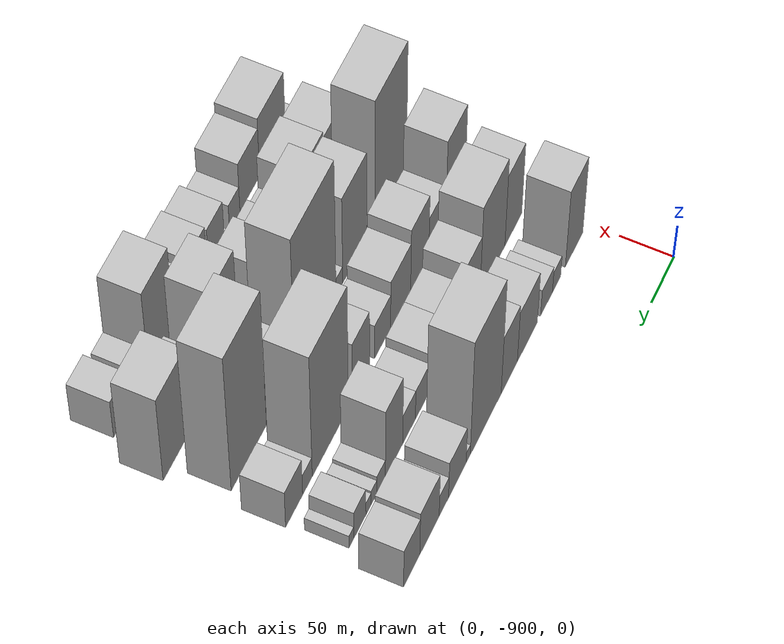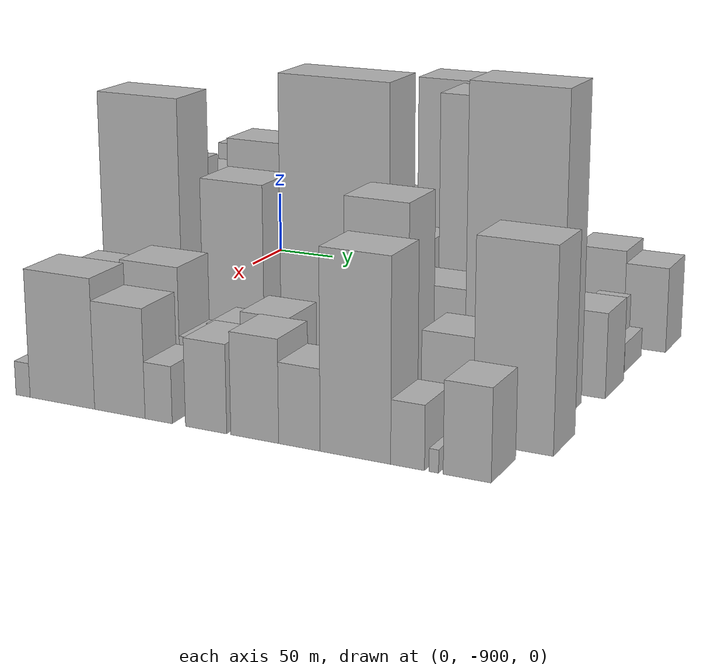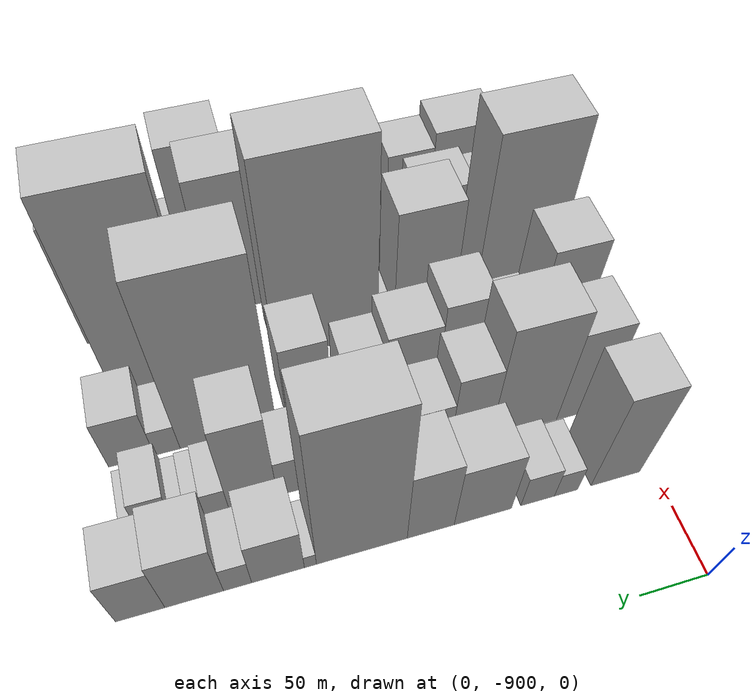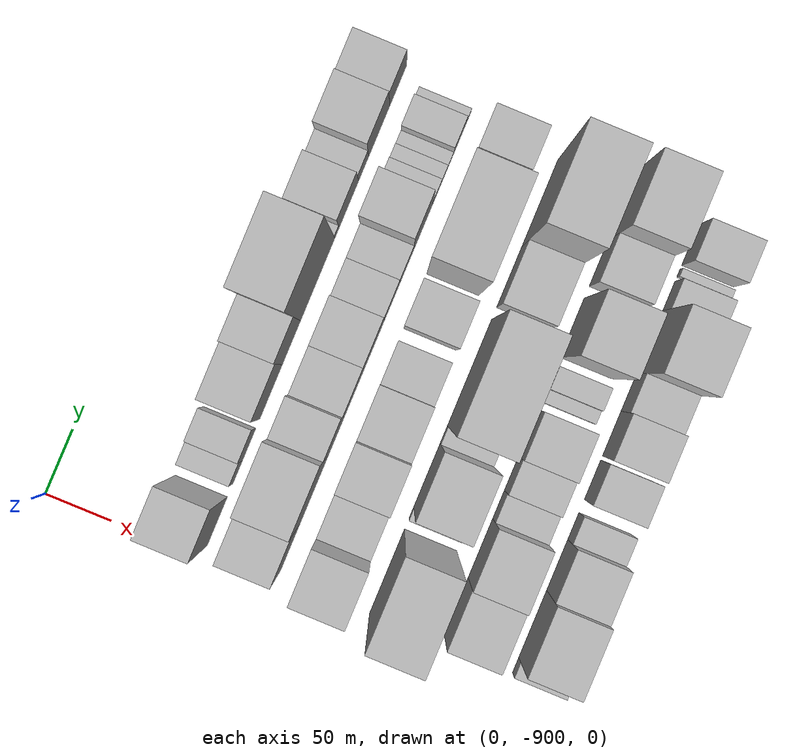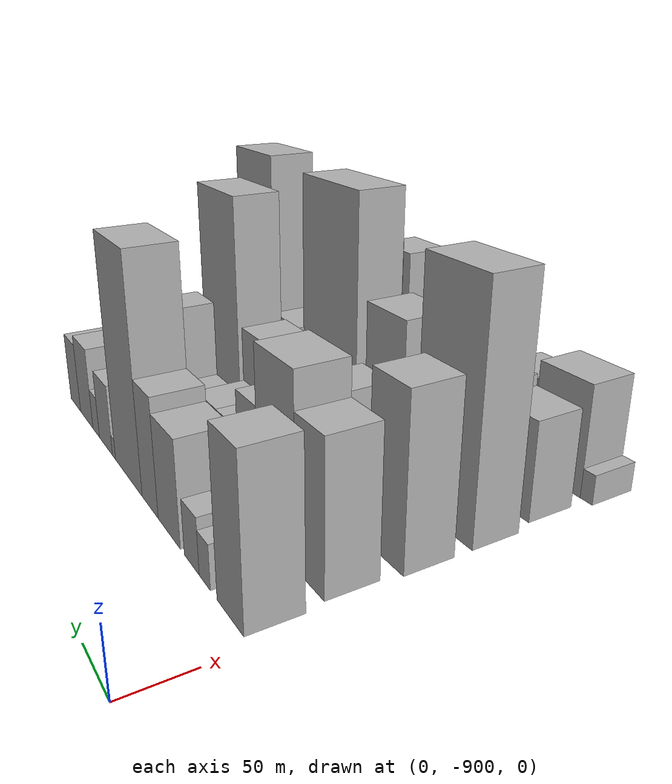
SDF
<sdf version="1.6">
 <world name="default">
  <model name="building_1">
   <static>1</static>
   <pose>100.0000 -871.1596 0 0.000000 0.000000 0.000000</pose>
   <link name="link">
    <pose>0 0 60.00 0 0 0</pose>
    <collision name="collision"><geometry><box><size>40.0000 37.6807 120.0000</size></box></geometry></collision>
    <visual name="visual">
     <cast_shadows>0</cast_shadows>
     <geometry><box><size>40.0000 37.6807 120.0000</size></box></geometry>
     <material>
      <script>
       <uri>model://HANNAS_wall/materials/scripts</uri>
       <uri>model://HANNAS_wall/materials/textures</uri>
       <name>vrc/HANNAS_wall</name>
      </script>
     </material>
    </visual>
   </link>
  </model>
  <model name="building_2">
   <static>1</static>
   <pose>100.0000 -833.4585 0 0.000000 0.000000 0.000000</pose>
   <link name="link">
    <pose>0 0 16.50 0 0 0</pose>
    <collision name="collision"><geometry><box><size>40.0000 17.7216 33.0000</size></box></geometry></collision>
    <visual name="visual">
     <cast_shadows>0</cast_shadows>
     <geometry><box><size>40.0000 17.7216 33.0000</size></box></geometry>
     <material>
      <script>
       <uri>model://HANNAS_wall/materials/scripts</uri>
       <uri>model://HANNAS_wall/materials/textures</uri>
       <name>vrc/HANNAS_wall</name>
      </script>
     </material>
    </visual>
   </link>
  </model>
  <model name="building_3">
   <static>1</static>
   <pose>100.0000 -812.0558 0 0.000000 0.000000 0.000000</pose>
   <link name="link">
    <pose>0 0 21.00 0 0 0</pose>
    <collision name="collision"><geometry><box><size>40.0000 25.0839 42.0000</size></box></geometry></collision>
    <visual name="visual">
     <cast_shadows>0</cast_shadows>
     <geometry><box><size>40.0000 25.0839 42.0000</size></box></geometry>
     <material>
      <script>
       <uri>model://HANNAS_wall/materials/scripts</uri>
       <uri>model://HANNAS_wall/materials/textures</uri>
       <name>vrc/HANNAS_wall</name>
      </script>
     </material>
    </visual>
   </link>
  </model>
  <model name="building_4">
   <static>1</static>
   <pose>100.0000 -771.5161 0 0.000000 0.000000 0.000000</pose>
   <link name="link">
    <pose>0 0 40.50 0 0 0</pose>
    <collision name="collision"><geometry><box><size>40.0000 41.9954 81.0000</size></box></geometry></collision>
    <visual name="visual">
     <cast_shadows>0</cast_shadows>
     <geometry><box><size>40.0000 41.9954 81.0000</size></box></geometry>
     <material>
      <script>
       <uri>model://HANNAS_wall/materials/scripts</uri>
       <uri>model://HANNAS_wall/materials/textures</uri>
       <name>vrc/HANNAS_wall</name>
      </script>
     </material>
    </visual>
   </link>
  </model>
  <model name="building_5">
   <static>1</static>
   <pose>100.0000 -733.6429 0 0.000000 0.000000 0.000000</pose>
   <link name="link">
    <pose>0 0 46.50 0 0 0</pose>
    <collision name="collision"><geometry><box><size>40.0000 33.7510 93.0000</size></box></geometry></collision>
    <visual name="visual">
     <cast_shadows>0</cast_shadows>
     <geometry><box><size>40.0000 33.7510 93.0000</size></box></geometry>
     <material>
      <script>
       <uri>model://HANNAS_wall/materials/scripts</uri>
       <uri>model://HANNAS_wall/materials/textures</uri>
       <name>vrc/HANNAS_wall</name>
      </script>
     </material>
    </visual>
   </link>
  </model>
  <model name="building_6">
   <static>1</static>
   <pose>100.0000 -685.0312 0 0.000000 0.000000 0.000000</pose>
   <link name="link">
    <pose>0 0 93.00 0 0 0</pose>
    <collision name="collision"><geometry><box><size>40.0000 63.4724 186.0000</size></box></geometry></collision>
    <visual name="visual">
     <cast_shadows>0</cast_shadows>
     <geometry><box><size>40.0000 63.4724 186.0000</size></box></geometry>
     <material>
      <script>
       <uri>model://HANNAS_wall/materials/scripts</uri>
       <uri>model://HANNAS_wall/materials/textures</uri>
       <name>vrc/HANNAS_wall</name>
      </script>
     </material>
    </visual>
   </link>
  </model>
  <model name="building_7">
   <static>1</static>
   <pose>100.0000 -649.1838 0 0.000000 0.000000 0.000000</pose>
   <link name="link">
    <pose>0 0 9.00 0 0 0</pose>
    <collision name="collision"><geometry><box><size>40.0000 8.2226 18.0000</size></box></geometry></collision>
    <visual name="visual">
     <cast_shadows>0</cast_shadows>
     <geometry><box><size>40.0000 8.2226 18.0000</size></box></geometry>
     <material>
      <script>
       <uri>model://HANNAS_wall/materials/scripts</uri>
       <uri>model://HANNAS_wall/materials/textures</uri>
       <name>vrc/HANNAS_wall</name>
      </script>
     </material>
    </visual>
   </link>
  </model>
  <model name="building_8">
   <static>1</static>
   <pose>100.0000 -627.2576 0 0.000000 0.000000 0.000000</pose>
   <link name="link">
    <pose>0 0 30.00 0 0 0</pose>
    <collision name="collision"><geometry><box><size>40.0000 35.6298 60.0000</size></box></geometry></collision>
    <visual name="visual">
     <cast_shadows>0</cast_shadows>
     <geometry><box><size>40.0000 35.6298 60.0000</size></box></geometry>
     <material>
      <script>
       <uri>model://HANNAS_wall/materials/scripts</uri>
       <uri>model://HANNAS_wall/materials/textures</uri>
       <name>vrc/HANNAS_wall</name>
      </script>
     </material>
    </visual>
   </link>
  </model>
  <model name="building_9">
   <static>1</static>
   <pose>100.0000 -600.0099 0 0.000000 0.000000 0.000000</pose>
   <link name="link">
    <pose>0 0 18.00 0 0 0</pose>
    <collision name="collision"><geometry><box><size>40.0000 18.8656 36.0000</size></box></geometry></collision>
    <visual name="visual">
     <cast_shadows>0</cast_shadows>
     <geometry><box><size>40.0000 18.8656 36.0000</size></box></geometry>
     <material>
      <script>
       <uri>model://HANNAS_wall/materials/scripts</uri>
       <uri>model://HANNAS_wall/materials/textures</uri>
       <name>vrc/HANNAS_wall</name>
      </script>
     </material>
    </visual>
   </link>
  </model>
  <model name="building_10">
   <static>1</static>
   <pose>100.0000 -571.3462 0 0.000000 0.000000 0.000000</pose>
   <link name="link">
    <pose>0 0 36.00 0 0 0</pose>
    <collision name="collision"><geometry><box><size>40.0000 38.4618 72.0000</size></box></geometry></collision>
    <visual name="visual">
     <cast_shadows>0</cast_shadows>
     <geometry><box><size>40.0000 38.4618 72.0000</size></box></geometry>
     <material>
      <script>
       <uri>model://HANNAS_wall/materials/scripts</uri>
       <uri>model://HANNAS_wall/materials/textures</uri>
       <name>vrc/HANNAS_wall</name>
      </script>
     </material>
    </visual>
   </link>
  </model>
  <model name="building_11">
   <static>1</static>
   <pose>100.0000 -536.1605 0 0.000000 0.000000 0.000000</pose>
   <link name="link">
    <pose>0 0 31.50 0 0 0</pose>
    <collision name="collision"><geometry><box><size>40.0000 31.9096 63.0000</size></box></geometry></collision>
    <visual name="visual">
     <cast_shadows>0</cast_shadows>
     <geometry><box><size>40.0000 31.9096 63.0000</size></box></geometry>
     <material>
      <script>
       <uri>model://HANNAS_wall/materials/scripts</uri>
       <uri>model://HANNAS_wall/materials/textures</uri>
       <name>vrc/HANNAS_wall</name>
      </script>
     </material>
    </visual>
   </link>
  </model>
  <model name="building_52">
   <static>1</static>
   <pose>155.0000 -868.0021 0 0.000000 0.000000 0.000000</pose>
   <link name="link">
    <pose>0 0 55.50 0 0 0</pose>
    <collision name="collision"><geometry><box><size>40.0000 35.9958 111.0000</size></box></geometry></collision>
    <visual name="visual">
     <cast_shadows>0</cast_shadows>
     <geometry><box><size>40.0000 35.9958 111.0000</size></box></geometry>
     <material>
      <script>
       <uri>model://HANNAS_wall/materials/scripts</uri>
       <uri>model://HANNAS_wall/materials/textures</uri>
       <name>vrc/HANNAS_wall</name>
      </script>
     </material>
    </visual>
   </link>
  </model>
  <model name="building_53">
   <static>1</static>
   <pose>155.0000 -823.8686 0 0.000000 0.000000 0.000000</pose>
   <link name="link">
    <pose>0 0 69.00 0 0 0</pose>
    <collision name="collision"><geometry><box><size>40.0000 52.2713 138.0000</size></box></geometry></collision>
    <visual name="visual">
     <cast_shadows>0</cast_shadows>
     <geometry><box><size>40.0000 52.2713 138.0000</size></box></geometry>
     <material>
      <script>
       <uri>model://HANNAS_wall/materials/scripts</uri>
       <uri>model://HANNAS_wall/materials/textures</uri>
       <name>vrc/HANNAS_wall</name>
      </script>
     </material>
    </visual>
   </link>
  </model>
  <model name="building_54">
   <static>1</static>
   <pose>155.0000 -782.2657 0 0.000000 0.000000 0.000000</pose>
   <link name="link">
    <pose>0 0 46.50 0 0 0</pose>
    <collision name="collision"><geometry><box><size>40.0000 30.9345 93.0000</size></box></geometry></collision>
    <visual name="visual">
     <cast_shadows>0</cast_shadows>
     <geometry><box><size>40.0000 30.9345 93.0000</size></box></geometry>
     <material>
      <script>
       <uri>model://HANNAS_wall/materials/scripts</uri>
       <uri>model://HANNAS_wall/materials/textures</uri>
       <name>vrc/HANNAS_wall</name>
      </script>
     </material>
    </visual>
   </link>
  </model>
  <model name="building_55">
   <static>1</static>
   <pose>155.0000 -748.6677 0 0.000000 0.000000 0.000000</pose>
   <link name="link">
    <pose>0 0 31.50 0 0 0</pose>
    <collision name="collision"><geometry><box><size>40.0000 36.2615 63.0000</size></box></geometry></collision>
    <visual name="visual">
     <cast_shadows>0</cast_shadows>
     <geometry><box><size>40.0000 36.2615 63.0000</size></box></geometry>
     <material>
      <script>
       <uri>model://HANNAS_wall/materials/scripts</uri>
       <uri>model://HANNAS_wall/materials/textures</uri>
       <name>vrc/HANNAS_wall</name>
      </script>
     </material>
    </visual>
   </link>
  </model>
  <model name="building_56">
   <static>1</static>
   <pose>155.0000 -712.0140 0 0.000000 0.000000 0.000000</pose>
   <link name="link">
    <pose>0 0 31.50 0 0 0</pose>
    <collision name="collision"><geometry><box><size>40.0000 37.0459 63.0000</size></box></geometry></collision>
    <visual name="visual">
     <cast_shadows>0</cast_shadows>
     <geometry><box><size>40.0000 37.0459 63.0000</size></box></geometry>
     <material>
      <script>
       <uri>model://HANNAS_wall/materials/scripts</uri>
       <uri>model://HANNAS_wall/materials/textures</uri>
       <name>vrc/HANNAS_wall</name>
      </script>
     </material>
    </visual>
   </link>
  </model>
  <model name="building_57">
   <static>1</static>
   <pose>155.0000 -679.3171 0 0.000000 0.000000 0.000000</pose>
   <link name="link">
    <pose>0 0 24.00 0 0 0</pose>
    <collision name="collision"><geometry><box><size>40.0000 28.3479 48.0000</size></box></geometry></collision>
    <visual name="visual">
     <cast_shadows>0</cast_shadows>
     <geometry><box><size>40.0000 28.3479 48.0000</size></box></geometry>
     <material>
      <script>
       <uri>model://HANNAS_wall/materials/scripts</uri>
       <uri>model://HANNAS_wall/materials/textures</uri>
       <name>vrc/HANNAS_wall</name>
      </script>
     </material>
    </visual>
   </link>
  </model>
  <model name="building_58">
   <static>1</static>
   <pose>155.0000 -652.4565 0 0.000000 0.000000 0.000000</pose>
   <link name="link">
    <pose>0 0 24.00 0 0 0</pose>
    <collision name="collision"><geometry><box><size>40.0000 25.3733 48.0000</size></box></geometry></collision>
    <visual name="visual">
     <cast_shadows>0</cast_shadows>
     <geometry><box><size>40.0000 25.3733 48.0000</size></box></geometry>
     <material>
      <script>
       <uri>model://HANNAS_wall/materials/scripts</uri>
       <uri>model://HANNAS_wall/materials/textures</uri>
       <name>vrc/HANNAS_wall</name>
      </script>
     </material>
    </visual>
   </link>
  </model>
  <model name="building_59">
   <static>1</static>
   <pose>155.0000 -622.4694 0 0.000000 0.000000 0.000000</pose>
   <link name="link">
    <pose>0 0 55.50 0 0 0</pose>
    <collision name="collision"><geometry><box><size>40.0000 34.6010 111.0000</size></box></geometry></collision>
    <visual name="visual">
     <cast_shadows>0</cast_shadows>
     <geometry><box><size>40.0000 34.6010 111.0000</size></box></geometry>
     <material>
      <script>
       <uri>model://HANNAS_wall/materials/scripts</uri>
       <uri>model://HANNAS_wall/materials/textures</uri>
       <name>vrc/HANNAS_wall</name>
      </script>
     </material>
    </visual>
   </link>
  </model>
  <model name="building_60">
   <static>1</static>
   <pose>155.0000 -596.7132 0 0.000000 0.000000 0.000000</pose>
   <link name="link">
    <pose>0 0 15.00 0 0 0</pose>
    <collision name="collision"><geometry><box><size>40.0000 16.9114 30.0000</size></box></geometry></collision>
    <visual name="visual">
     <cast_shadows>0</cast_shadows>
     <geometry><box><size>40.0000 16.9114 30.0000</size></box></geometry>
     <material>
      <script>
       <uri>model://HANNAS_wall/materials/scripts</uri>
       <uri>model://HANNAS_wall/materials/textures</uri>
       <name>vrc/HANNAS_wall</name>
      </script>
     </material>
    </visual>
   </link>
  </model>
  <model name="building_61">
   <static>1</static>
   <pose>155.0000 -582.6528 0 0.000000 0.000000 0.000000</pose>
   <link name="link">
    <pose>0 0 12.00 0 0 0</pose>
    <collision name="collision"><geometry><box><size>40.0000 11.2093 24.0000</size></box></geometry></collision>
    <visual name="visual">
     <cast_shadows>0</cast_shadows>
     <geometry><box><size>40.0000 11.2093 24.0000</size></box></geometry>
     <material>
      <script>
       <uri>model://HANNAS_wall/materials/scripts</uri>
       <uri>model://HANNAS_wall/materials/textures</uri>
       <name>vrc/HANNAS_wall</name>
      </script>
     </material>
    </visual>
   </link>
  </model>
  <model name="building_62">
   <static>1</static>
   <pose>155.0000 -571.9498 0 0.000000 0.000000 0.000000</pose>
   <link name="link">
    <pose>0 0 10.50 0 0 0</pose>
    <collision name="collision"><geometry><box><size>40.0000 10.1967 21.0000</size></box></geometry></collision>
    <visual name="visual">
     <cast_shadows>0</cast_shadows>
     <geometry><box><size>40.0000 10.1967 21.0000</size></box></geometry>
     <material>
      <script>
       <uri>model://HANNAS_wall/materials/scripts</uri>
       <uri>model://HANNAS_wall/materials/textures</uri>
       <name>vrc/HANNAS_wall</name>
      </script>
     </material>
    </visual>
   </link>
  </model>
  <model name="building_63">
   <static>1</static>
   <pose>155.0000 -555.0204 0 0.000000 0.000000 0.000000</pose>
   <link name="link">
    <pose>0 0 22.50 0 0 0</pose>
    <collision name="collision"><geometry><box><size>40.0000 23.6621 45.0000</size></box></geometry></collision>
    <visual name="visual">
     <cast_shadows>0</cast_shadows>
     <geometry><box><size>40.0000 23.6621 45.0000</size></box></geometry>
     <material>
      <script>
       <uri>model://HANNAS_wall/materials/scripts</uri>
       <uri>model://HANNAS_wall/materials/textures</uri>
       <name>vrc/HANNAS_wall</name>
      </script>
     </material>
    </visual>
   </link>
  </model>
  <model name="building_64">
   <static>1</static>
   <pose>155.0000 -538.4896 0 0.000000 0.000000 0.000000</pose>
   <link name="link">
    <pose>0 0 10.50 0 0 0</pose>
    <collision name="collision"><geometry><box><size>40.0000 9.3997 21.0000</size></box></geometry></collision>
    <visual name="visual">
     <cast_shadows>0</cast_shadows>
     <geometry><box><size>40.0000 9.3997 21.0000</size></box></geometry>
     <material>
      <script>
       <uri>model://HANNAS_wall/materials/scripts</uri>
       <uri>model://HANNAS_wall/materials/textures</uri>
       <name>vrc/HANNAS_wall</name>
      </script>
     </material>
    </visual>
   </link>
  </model>
  <model name="building_102">
   <static>1</static>
   <pose>210.0000 -869.7920 0 0.000000 0.000000 0.000000</pose>
   <link name="link">
    <pose>0 0 64.50 0 0 0</pose>
    <collision name="collision"><geometry><box><size>40.0000 40.4159 129.0000</size></box></geometry></collision>
    <visual name="visual">
     <cast_shadows>0</cast_shadows>
     <geometry><box><size>40.0000 40.4159 129.0000</size></box></geometry>
     <material>
      <script>
       <uri>model://HANNAS_wall/materials/scripts</uri>
       <uri>model://HANNAS_wall/materials/textures</uri>
       <name>vrc/HANNAS_wall</name>
      </script>
     </material>
    </visual>
   </link>
  </model>
  <model name="building_103">
   <static>1</static>
   <pose>210.0000 -832.0099 0 0.000000 0.000000 0.000000</pose>
   <link name="link">
    <pose>0 0 30.00 0 0 0</pose>
    <collision name="collision"><geometry><box><size>40.0000 35.1484 60.0000</size></box></geometry></collision>
    <visual name="visual">
     <cast_shadows>0</cast_shadows>
     <geometry><box><size>40.0000 35.1484 60.0000</size></box></geometry>
     <material>
      <script>
       <uri>model://HANNAS_wall/materials/scripts</uri>
       <uri>model://HANNAS_wall/materials/textures</uri>
       <name>vrc/HANNAS_wall</name>
      </script>
     </material>
    </visual>
   </link>
  </model>
  <model name="building_104">
   <static>1</static>
   <pose>210.0000 -795.7693 0 0.000000 0.000000 0.000000</pose>
   <link name="link">
    <pose>0 0 48.00 0 0 0</pose>
    <collision name="collision"><geometry><box><size>40.0000 37.3328 96.0000</size></box></geometry></collision>
    <visual name="visual">
     <cast_shadows>0</cast_shadows>
     <geometry><box><size>40.0000 37.3328 96.0000</size></box></geometry>
     <material>
      <script>
       <uri>model://HANNAS_wall/materials/scripts</uri>
       <uri>model://HANNAS_wall/materials/textures</uri>
       <name>vrc/HANNAS_wall</name>
      </script>
     </material>
    </visual>
   </link>
  </model>
  <model name="building_105">
   <static>1</static>
   <pose>210.0000 -756.6601 0 0.000000 0.000000 0.000000</pose>
   <link name="link">
    <pose>0 0 37.50 0 0 0</pose>
    <collision name="collision"><geometry><box><size>40.0000 40.8856 75.0000</size></box></geometry></collision>
    <visual name="visual">
     <cast_shadows>0</cast_shadows>
     <geometry><box><size>40.0000 40.8856 75.0000</size></box></geometry>
     <material>
      <script>
       <uri>model://HANNAS_wall/materials/scripts</uri>
       <uri>model://HANNAS_wall/materials/textures</uri>
       <name>vrc/HANNAS_wall</name>
      </script>
     </material>
    </visual>
   </link>
  </model>
  <model name="building_106">
   <static>1</static>
   <pose>210.0000 -720.0202 0 0.000000 0.000000 0.000000</pose>
   <link name="link">
    <pose>0 0 27.00 0 0 0</pose>
    <collision name="collision"><geometry><box><size>40.0000 32.3942 54.0000</size></box></geometry></collision>
    <visual name="visual">
     <cast_shadows>0</cast_shadows>
     <geometry><box><size>40.0000 32.3942 54.0000</size></box></geometry>
     <material>
      <script>
       <uri>model://HANNAS_wall/materials/scripts</uri>
       <uri>model://HANNAS_wall/materials/textures</uri>
       <name>vrc/HANNAS_wall</name>
      </script>
     </material>
    </visual>
   </link>
  </model>
  <model name="building_107">
   <static>1</static>
   <pose>210.0000 -676.7951 0 0.000000 0.000000 0.000000</pose>
   <link name="link">
    <pose>0 0 46.50 0 0 0</pose>
    <collision name="collision"><geometry><box><size>40.0000 34.0562 93.0000</size></box></geometry></collision>
    <visual name="visual">
     <cast_shadows>0</cast_shadows>
     <geometry><box><size>40.0000 34.0562 93.0000</size></box></geometry>
     <material>
      <script>
       <uri>model://HANNAS_wall/materials/scripts</uri>
       <uri>model://HANNAS_wall/materials/textures</uri>
       <name>vrc/HANNAS_wall</name>
      </script>
     </material>
    </visual>
   </link>
  </model>
  <model name="building_108">
   <static>1</static>
   <pose>210.0000 -616.2414 0 0.000000 0.000000 0.000000</pose>
   <link name="link">
    <pose>0 0 99.00 0 0 0</pose>
    <collision name="collision"><geometry><box><size>40.0000 71.0511 198.0000</size></box></geometry></collision>
    <visual name="visual">
     <cast_shadows>0</cast_shadows>
     <geometry><box><size>40.0000 71.0511 198.0000</size></box></geometry>
     <material>
      <script>
       <uri>model://HANNAS_wall/materials/scripts</uri>
       <uri>model://HANNAS_wall/materials/textures</uri>
       <name>vrc/HANNAS_wall</name>
      </script>
     </material>
    </visual>
   </link>
  </model>
  <model name="building_109">
   <static>1</static>
   <pose>210.0000 -571.4158 0 0.000000 0.000000 0.000000</pose>
   <link name="link">
    <pose>0 0 16.50 0 0 0</pose>
    <collision name="collision"><geometry><box><size>40.0000 18.6002 33.0000</size></box></geometry></collision>
    <visual name="visual">
     <cast_shadows>0</cast_shadows>
     <geometry><box><size>40.0000 18.6002 33.0000</size></box></geometry>
     <material>
      <script>
       <uri>model://HANNAS_wall/materials/scripts</uri>
       <uri>model://HANNAS_wall/materials/textures</uri>
       <name>vrc/HANNAS_wall</name>
      </script>
     </material>
    </visual>
   </link>
  </model>
  <model name="building_110">
   <static>1</static>
   <pose>210.0000 -545.7513 0 0.000000 0.000000 0.000000</pose>
   <link name="link">
    <pose>0 0 30.00 0 0 0</pose>
    <collision name="collision"><geometry><box><size>40.0000 32.7287 60.0000</size></box></geometry></collision>
    <visual name="visual">
     <cast_shadows>0</cast_shadows>
     <geometry><box><size>40.0000 32.7287 60.0000</size></box></geometry>
     <material>
      <script>
       <uri>model://HANNAS_wall/materials/scripts</uri>
       <uri>model://HANNAS_wall/materials/textures</uri>
       <name>vrc/HANNAS_wall</name>
      </script>
     </material>
    </visual>
   </link>
  </model>
  <model name="building_152">
   <static>1</static>
   <pose>265.0000 -857.5514 0 0.000000 0.000000 0.000000</pose>
   <link name="link">
    <pose>0 0 94.50 0 0 0</pose>
    <collision name="collision"><geometry><box><size>40.0000 64.8972 189.0000</size></box></geometry></collision>
    <visual name="visual">
     <cast_shadows>0</cast_shadows>
     <geometry><box><size>40.0000 64.8972 189.0000</size></box></geometry>
     <material>
      <script>
       <uri>model://HANNAS_wall/materials/scripts</uri>
       <uri>model://HANNAS_wall/materials/textures</uri>
       <name>vrc/HANNAS_wall</name>
      </script>
     </material>
    </visual>
   </link>
  </model>
  <model name="building_153">
   <static>1</static>
   <pose>265.0000 -812.6289 0 0.000000 0.000000 0.000000</pose>
   <link name="link">
    <pose>0 0 10.50 0 0 0</pose>
    <collision name="collision"><geometry><box><size>40.0000 8.9478 21.0000</size></box></geometry></collision>
    <visual name="visual">
     <cast_shadows>0</cast_shadows>
     <geometry><box><size>40.0000 8.9478 21.0000</size></box></geometry>
     <material>
      <script>
       <uri>model://HANNAS_wall/materials/scripts</uri>
       <uri>model://HANNAS_wall/materials/textures</uri>
       <name>vrc/HANNAS_wall</name>
      </script>
     </material>
    </visual>
   </link>
  </model>
  <model name="building_154">
   <static>1</static>
   <pose>265.0000 -783.6729 0 0.000000 0.000000 0.000000</pose>
   <link name="link">
    <pose>0 0 67.50 0 0 0</pose>
    <collision name="collision"><geometry><box><size>40.0000 48.9642 135.0000</size></box></geometry></collision>
    <visual name="visual">
     <cast_shadows>0</cast_shadows>
     <geometry><box><size>40.0000 48.9642 135.0000</size></box></geometry>
     <material>
      <script>
       <uri>model://HANNAS_wall/materials/scripts</uri>
       <uri>model://HANNAS_wall/materials/textures</uri>
       <name>vrc/HANNAS_wall</name>
      </script>
     </material>
    </visual>
   </link>
  </model>
  <model name="building_155">
   <static>1</static>
   <pose>265.0000 -752.5032 0 0.000000 0.000000 0.000000</pose>
   <link name="link">
    <pose>0 0 13.50 0 0 0</pose>
    <collision name="collision"><geometry><box><size>40.0000 13.3753 27.0000</size></box></geometry></collision>
    <visual name="visual">
     <cast_shadows>0</cast_shadows>
     <geometry><box><size>40.0000 13.3753 27.0000</size></box></geometry>
     <material>
      <script>
       <uri>model://HANNAS_wall/materials/scripts</uri>
       <uri>model://HANNAS_wall/materials/textures</uri>
       <name>vrc/HANNAS_wall</name>
      </script>
     </material>
    </visual>
   </link>
  </model>
  <model name="building_156">
   <static>1</static>
   <pose>265.0000 -704.7738 0 0.000000 0.000000 0.000000</pose>
   <link name="link">
    <pose>0 0 106.50 0 0 0</pose>
    <collision name="collision"><geometry><box><size>40.0000 82.0834 213.0000</size></box></geometry></collision>
    <visual name="visual">
     <cast_shadows>0</cast_shadows>
     <geometry><box><size>40.0000 82.0834 213.0000</size></box></geometry>
     <material>
      <script>
       <uri>model://HANNAS_wall/materials/scripts</uri>
       <uri>model://HANNAS_wall/materials/textures</uri>
       <name>vrc/HANNAS_wall</name>
      </script>
     </material>
    </visual>
   </link>
  </model>
  <model name="building_157">
   <static>1</static>
   <pose>265.0000 -631.7012 0 0.000000 0.000000 0.000000</pose>
   <link name="link">
    <pose>0 0 40.50 0 0 0</pose>
    <collision name="collision"><geometry><box><size>40.0000 46.0619 81.0000</size></box></geometry></collision>
    <visual name="visual">
     <cast_shadows>0</cast_shadows>
     <geometry><box><size>40.0000 46.0619 81.0000</size></box></geometry>
     <material>
      <script>
       <uri>model://HANNAS_wall/materials/scripts</uri>
       <uri>model://HANNAS_wall/materials/textures</uri>
       <name>vrc/HANNAS_wall</name>
      </script>
     </material>
    </visual>
   </link>
  </model>
  <model name="building_158">
   <static>1</static>
   <pose>265.0000 -574.9108 0 0.000000 0.000000 0.000000</pose>
   <link name="link">
    <pose>0 0 109.50 0 0 0</pose>
    <collision name="collision"><geometry><box><size>40.0000 67.5189 219.0000</size></box></geometry></collision>
    <visual name="visual">
     <cast_shadows>0</cast_shadows>
     <geometry><box><size>40.0000 67.5189 219.0000</size></box></geometry>
     <material>
      <script>
       <uri>model://HANNAS_wall/materials/scripts</uri>
       <uri>model://HANNAS_wall/materials/textures</uri>
       <name>vrc/HANNAS_wall</name>
      </script>
     </material>
    </visual>
   </link>
  </model>
  <model name="building_202">
   <static>1</static>
   <pose>320.0000 -861.8088 0 0.000000 0.000000 0.000000</pose>
   <link name="link">
    <pose>0 0 39.00 0 0 0</pose>
    <collision name="collision"><geometry><box><size>40.0000 44.3825 78.0000</size></box></geometry></collision>
    <visual name="visual">
     <cast_shadows>0</cast_shadows>
     <geometry><box><size>40.0000 44.3825 78.0000</size></box></geometry>
     <material>
      <script>
       <uri>model://HANNAS_wall/materials/scripts</uri>
       <uri>model://HANNAS_wall/materials/textures</uri>
       <name>vrc/HANNAS_wall</name>
      </script>
     </material>
    </visual>
   </link>
  </model>
  <model name="building_203">
   <static>1</static>
   <pose>320.0000 -816.8881 0 0.000000 0.000000 0.000000</pose>
   <link name="link">
    <pose>0 0 43.50 0 0 0</pose>
    <collision name="collision"><geometry><box><size>40.0000 45.4590 87.0000</size></box></geometry></collision>
    <visual name="visual">
     <cast_shadows>0</cast_shadows>
     <geometry><box><size>40.0000 45.4590 87.0000</size></box></geometry>
     <material>
      <script>
       <uri>model://HANNAS_wall/materials/scripts</uri>
       <uri>model://HANNAS_wall/materials/textures</uri>
       <name>vrc/HANNAS_wall</name>
      </script>
     </material>
    </visual>
   </link>
  </model>
  <model name="building_204">
   <static>1</static>
   <pose>320.0000 -783.3394 0 0.000000 0.000000 0.000000</pose>
   <link name="link">
    <pose>0 0 19.50 0 0 0</pose>
    <collision name="collision"><geometry><box><size>40.0000 21.6383 39.0000</size></box></geometry></collision>
    <visual name="visual">
     <cast_shadows>0</cast_shadows>
     <geometry><box><size>40.0000 21.6383 39.0000</size></box></geometry>
     <material>
      <script>
       <uri>model://HANNAS_wall/materials/scripts</uri>
       <uri>model://HANNAS_wall/materials/textures</uri>
       <name>vrc/HANNAS_wall</name>
      </script>
     </material>
    </visual>
   </link>
  </model>
  <model name="building_205">
   <static>1</static>
   <pose>320.0000 -759.5103 0 0.000000 0.000000 0.000000</pose>
   <link name="link">
    <pose>0 0 25.50 0 0 0</pose>
    <collision name="collision"><geometry><box><size>40.0000 26.0199 51.0000</size></box></geometry></collision>
    <visual name="visual">
     <cast_shadows>0</cast_shadows>
     <geometry><box><size>40.0000 26.0199 51.0000</size></box></geometry>
     <material>
      <script>
       <uri>model://HANNAS_wall/materials/scripts</uri>
       <uri>model://HANNAS_wall/materials/textures</uri>
       <name>vrc/HANNAS_wall</name>
      </script>
     </material>
    </visual>
   </link>
  </model>
  <model name="building_206">
   <static>1</static>
   <pose>320.0000 -728.5249 0 0.000000 0.000000 0.000000</pose>
   <link name="link">
    <pose>0 0 31.50 0 0 0</pose>
    <collision name="collision"><geometry><box><size>40.0000 35.9509 63.0000</size></box></geometry></collision>
    <visual name="visual">
     <cast_shadows>0</cast_shadows>
     <geometry><box><size>40.0000 35.9509 63.0000</size></box></geometry>
     <material>
      <script>
       <uri>model://HANNAS_wall/materials/scripts</uri>
       <uri>model://HANNAS_wall/materials/textures</uri>
       <name>vrc/HANNAS_wall</name>
      </script>
     </material>
    </visual>
   </link>
  </model>
  <model name="building_207">
   <static>1</static>
   <pose>320.0000 -699.4796 0 0.000000 0.000000 0.000000</pose>
   <link name="link">
    <pose>0 0 10.50 0 0 0</pose>
    <collision name="collision"><geometry><box><size>40.0000 10.1396 21.0000</size></box></geometry></collision>
    <visual name="visual">
     <cast_shadows>0</cast_shadows>
     <geometry><box><size>40.0000 10.1396 21.0000</size></box></geometry>
     <material>
      <script>
       <uri>model://HANNAS_wall/materials/scripts</uri>
       <uri>model://HANNAS_wall/materials/textures</uri>
       <name>vrc/HANNAS_wall</name>
      </script>
     </material>
    </visual>
   </link>
  </model>
  <model name="building_208">
   <static>1</static>
   <pose>320.0000 -685.7355 0 0.000000 0.000000 0.000000</pose>
   <link name="link">
    <pose>0 0 16.50 0 0 0</pose>
    <collision name="collision"><geometry><box><size>40.0000 17.3486 33.0000</size></box></geometry></collision>
    <visual name="visual">
     <cast_shadows>0</cast_shadows>
     <geometry><box><size>40.0000 17.3486 33.0000</size></box></geometry>
     <material>
      <script>
       <uri>model://HANNAS_wall/materials/scripts</uri>
       <uri>model://HANNAS_wall/materials/textures</uri>
       <name>vrc/HANNAS_wall</name>
      </script>
     </material>
    </visual>
   </link>
  </model>
  <model name="building_209">
   <static>1</static>
   <pose>320.0000 -647.3328 0 0.000000 0.000000 0.000000</pose>
   <link name="link">
    <pose>0 0 75.00 0 0 0</pose>
    <collision name="collision"><geometry><box><size>40.0000 45.4567 150.0000</size></box></geometry></collision>
    <visual name="visual">
     <cast_shadows>0</cast_shadows>
     <geometry><box><size>40.0000 45.4567 150.0000</size></box></geometry>
     <material>
      <script>
       <uri>model://HANNAS_wall/materials/scripts</uri>
       <uri>model://HANNAS_wall/materials/textures</uri>
       <name>vrc/HANNAS_wall</name>
      </script>
     </material>
    </visual>
   </link>
  </model>
  <model name="building_210">
   <static>1</static>
   <pose>320.0000 -597.7327 0 0.000000 0.000000 0.000000</pose>
   <link name="link">
    <pose>0 0 34.50 0 0 0</pose>
    <collision name="collision"><geometry><box><size>40.0000 35.7436 69.0000</size></box></geometry></collision>
    <visual name="visual">
     <cast_shadows>0</cast_shadows>
     <geometry><box><size>40.0000 35.7436 69.0000</size></box></geometry>
     <material>
      <script>
       <uri>model://HANNAS_wall/materials/scripts</uri>
       <uri>model://HANNAS_wall/materials/textures</uri>
       <name>vrc/HANNAS_wall</name>
      </script>
     </material>
    </visual>
   </link>
  </model>
  <model name="building_211">
   <static>1</static>
   <pose>320.0000 -553.1364 0 0.000000 0.000000 0.000000</pose>
   <link name="link">
    <pose>0 0 67.50 0 0 0</pose>
    <collision name="collision"><geometry><box><size>40.0000 53.4490 135.0000</size></box></geometry></collision>
    <visual name="visual">
     <cast_shadows>0</cast_shadows>
     <geometry><box><size>40.0000 53.4490 135.0000</size></box></geometry>
     <material>
      <script>
       <uri>model://HANNAS_wall/materials/scripts</uri>
       <uri>model://HANNAS_wall/materials/textures</uri>
       <name>vrc/HANNAS_wall</name>
      </script>
     </material>
    </visual>
   </link>
  </model>
  <model name="building_249">
   <static>1</static>
   <pose>375.0000 -884.1883 0 0.000000 0.000000 0.000000</pose>
   <link name="link">
    <pose>0 0 12.00 0 0 0</pose>
    <collision name="collision"><geometry><box><size>40.0000 11.6235 24.0000</size></box></geometry></collision>
    <visual name="visual">
     <cast_shadows>0</cast_shadows>
     <geometry><box><size>40.0000 11.6235 24.0000</size></box></geometry>
     <material>
      <script>
       <uri>model://HANNAS_wall/materials/scripts</uri>
       <uri>model://HANNAS_wall/materials/textures</uri>
       <name>vrc/HANNAS_wall</name>
      </script>
     </material>
    </visual>
   </link>
  </model>
  <model name="building_250">
   <static>1</static>
   <pose>375.0000 -852.4729 0 0.000000 0.000000 0.000000</pose>
   <link name="link">
    <pose>0 0 45.00 0 0 0</pose>
    <collision name="collision"><geometry><box><size>40.0000 51.8073 90.0000</size></box></geometry></collision>
    <visual name="visual">
     <cast_shadows>0</cast_shadows>
     <geometry><box><size>40.0000 51.8073 90.0000</size></box></geometry>
     <material>
      <script>
       <uri>model://HANNAS_wall/materials/scripts</uri>
       <uri>model://HANNAS_wall/materials/textures</uri>
       <name>vrc/HANNAS_wall</name>
      </script>
     </material>
    </visual>
   </link>
  </model>
  <model name="building_251">
   <static>1</static>
   <pose>375.0000 -806.9742 0 0.000000 0.000000 0.000000</pose>
   <link name="link">
    <pose>0 0 37.50 0 0 0</pose>
    <collision name="collision"><geometry><box><size>40.0000 39.1900 75.0000</size></box></geometry></collision>
    <visual name="visual">
     <cast_shadows>0</cast_shadows>
     <geometry><box><size>40.0000 39.1900 75.0000</size></box></geometry>
     <material>
      <script>
       <uri>model://HANNAS_wall/materials/scripts</uri>
       <uri>model://HANNAS_wall/materials/textures</uri>
       <name>vrc/HANNAS_wall</name>
      </script>
     </material>
    </visual>
   </link>
  </model>
  <model name="building_252">
   <static>1</static>
   <pose>375.0000 -777.0604 0 0.000000 0.000000 0.000000</pose>
   <link name="link">
    <pose>0 0 19.50 0 0 0</pose>
    <collision name="collision"><geometry><box><size>40.0000 20.6376 39.0000</size></box></geometry></collision>
    <visual name="visual">
     <cast_shadows>0</cast_shadows>
     <geometry><box><size>40.0000 20.6376 39.0000</size></box></geometry>
     <material>
      <script>
       <uri>model://HANNAS_wall/materials/scripts</uri>
       <uri>model://HANNAS_wall/materials/textures</uri>
       <name>vrc/HANNAS_wall</name>
      </script>
     </material>
    </visual>
   </link>
  </model>
  <model name="building_253">
   <static>1</static>
   <pose>375.0000 -741.4803 0 0.000000 0.000000 0.000000</pose>
   <link name="link">
    <pose>0 0 30.00 0 0 0</pose>
    <collision name="collision"><geometry><box><size>40.0000 30.5226 60.0000</size></box></geometry></collision>
    <visual name="visual">
     <cast_shadows>0</cast_shadows>
     <geometry><box><size>40.0000 30.5226 60.0000</size></box></geometry>
     <material>
      <script>
       <uri>model://HANNAS_wall/materials/scripts</uri>
       <uri>model://HANNAS_wall/materials/textures</uri>
       <name>vrc/HANNAS_wall</name>
      </script>
     </material>
    </visual>
   </link>
  </model>
  <model name="building_254">
   <static>1</static>
   <pose>375.0000 -705.9548 0 0.000000 0.000000 0.000000</pose>
   <link name="link">
    <pose>0 0 34.50 0 0 0</pose>
    <collision name="collision"><geometry><box><size>40.0000 34.5284 69.0000</size></box></geometry></collision>
    <visual name="visual">
     <cast_shadows>0</cast_shadows>
     <geometry><box><size>40.0000 34.5284 69.0000</size></box></geometry>
     <material>
      <script>
       <uri>model://HANNAS_wall/materials/scripts</uri>
       <uri>model://HANNAS_wall/materials/textures</uri>
       <name>vrc/HANNAS_wall</name>
      </script>
     </material>
    </visual>
   </link>
  </model>
  <model name="building_255">
   <static>1</static>
   <pose>375.0000 -674.0877 0 0.000000 0.000000 0.000000</pose>
   <link name="link">
    <pose>0 0 27.00 0 0 0</pose>
    <collision name="collision"><geometry><box><size>40.0000 29.2058 54.0000</size></box></geometry></collision>
    <visual name="visual">
     <cast_shadows>0</cast_shadows>
     <geometry><box><size>40.0000 29.2058 54.0000</size></box></geometry>
     <material>
      <script>
       <uri>model://HANNAS_wall/materials/scripts</uri>
       <uri>model://HANNAS_wall/materials/textures</uri>
       <name>vrc/HANNAS_wall</name>
      </script>
     </material>
    </visual>
   </link>
  </model>
  <model name="building_256">
   <static>1</static>
   <pose>375.0000 -635.3877 0 0.000000 0.000000 0.000000</pose>
   <link name="link">
    <pose>0 0 66.00 0 0 0</pose>
    <collision name="collision"><geometry><box><size>40.0000 48.1942 132.0000</size></box></geometry></collision>
    <visual name="visual">
     <cast_shadows>0</cast_shadows>
     <geometry><box><size>40.0000 48.1942 132.0000</size></box></geometry>
     <material>
      <script>
       <uri>model://HANNAS_wall/materials/scripts</uri>
       <uri>model://HANNAS_wall/materials/textures</uri>
       <name>vrc/HANNAS_wall</name>
      </script>
     </material>
    </visual>
   </link>
  </model>
  <model name="building_257">
   <static>1</static>
   <pose>375.0000 -600.0291 0 0.000000 0.000000 0.000000</pose>
   <link name="link">
    <pose>0 0 21.00 0 0 0</pose>
    <collision name="collision"><geometry><box><size>40.0000 22.5230 42.0000</size></box></geometry></collision>
    <visual name="visual">
     <cast_shadows>0</cast_shadows>
     <geometry><box><size>40.0000 22.5230 42.0000</size></box></geometry>
     <material>
      <script>
       <uri>model://HANNAS_wall/materials/scripts</uri>
       <uri>model://HANNAS_wall/materials/textures</uri>
       <name>vrc/HANNAS_wall</name>
      </script>
     </material>
    </visual>
   </link>
  </model>
  <model name="building_258">
   <static>1</static>
   <pose>375.0000 -582.6598 0 0.000000 0.000000 0.000000</pose>
   <link name="link">
    <pose>0 0 7.50 0 0 0</pose>
    <collision name="collision"><geometry><box><size>40.0000 6.2156 15.0000</size></box></geometry></collision>
    <visual name="visual">
     <cast_shadows>0</cast_shadows>
     <geometry><box><size>40.0000 6.2156 15.0000</size></box></geometry>
     <material>
      <script>
       <uri>model://HANNAS_wall/materials/scripts</uri>
       <uri>model://HANNAS_wall/materials/textures</uri>
       <name>vrc/HANNAS_wall</name>
      </script>
     </material>
    </visual>
   </link>
  </model>
  <model name="building_259">
   <static>1</static>
   <pose>375.0000 -561.0201 0 0.000000 0.000000 0.000000</pose>
   <link name="link">
    <pose>0 0 30.00 0 0 0</pose>
    <collision name="collision"><geometry><box><size>40.0000 31.0638 60.0000</size></box></geometry></collision>
    <visual name="visual">
     <cast_shadows>0</cast_shadows>
     <geometry><box><size>40.0000 31.0638 60.0000</size></box></geometry>
     <material>
      <script>
       <uri>model://HANNAS_wall/materials/scripts</uri>
       <uri>model://HANNAS_wall/materials/textures</uri>
       <name>vrc/HANNAS_wall</name>
      </script>
     </material>
    </visual>
   </link>
  </model>
 </world>
</sdf>
